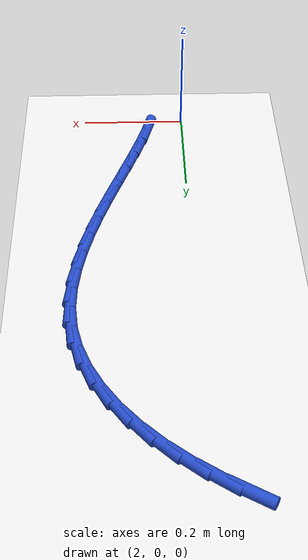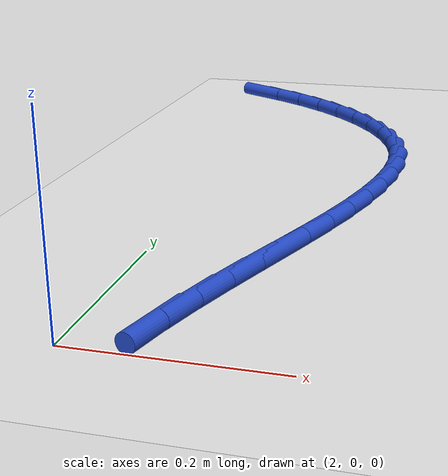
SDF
<sdf version="1.6">
 <world name="default">
  <model name="ground_plane">
   <static>1</static>
   <link name="link">
    <collision name="collision">
     <geometry><plane><normal>0 0 1</normal><size>100 100</size></plane></geometry>
     <surface><friction><ode><mu>100</mu><mu2>50</mu2></ode></friction></surface>
    </collision>
    <visual name="visual">
     <cast_shadows>0</cast_shadows>
     <geometry><plane><normal>0 0 1</normal><size>100 100</size></plane></geometry>
     <material>
      <script><uri>file://media/materials/scripts/gazebo.material</uri><name>Gazebo/WhiteGlow</name></script>
     </material>
    </visual>
   </link>
  </model>
  <model name="line">
   <link name="link_62">
    <pose>1.9425772596434834 0.8891730381126728 0.01 0 1.57 -0.5239647020566908</pose>
    <collision name="collision">
     <geometry><cylinder><radius>0.01</radius><length>0.08</length></cylinder></geometry>
    </collision>
    <visual name="visual">
     <material>
      <script><name>Gazebo/Blue</name><uri>file://media/materials/scripts/gazebo.material</uri></script>
     </material>
     <geometry><cylinder><radius>0.01</radius><length>0.08</length></cylinder></geometry>
    </visual>
   </link>
   <link name="link_63">
    <pose>1.98695704784988 0.863528697883657 0.01 0 1.57 -0.5955222361642104</pose>
    <collision name="collision">
     <geometry><cylinder><radius>0.01</radius><length>0.08</length></cylinder></geometry>
    </collision>
    <visual name="visual">
     <material>
      <script><name>Gazebo/Blue</name><uri>file://media/materials/scripts/gazebo.material</uri></script>
     </material>
     <geometry><cylinder><radius>0.01</radius><length>0.08</length></cylinder></geometry>
    </visual>
   </link>
   <link name="link_64">
    <pose>2.028680565102636 0.8352575397938995 0.01 0 1.57 -0.6728282916552596</pose>
    <collision name="collision">
     <geometry><cylinder><radius>0.01</radius><length>0.08</length></cylinder></geometry>
    </collision>
    <visual name="visual">
     <material>
      <script><name>Gazebo/Blue</name><uri>file://media/materials/scripts/gazebo.material</uri></script>
     </material>
     <geometry><cylinder><radius>0.01</radius><length>0.08</length></cylinder></geometry>
    </visual>
   </link>
   <link name="link_65">
    <pose>2.067290307007577 0.8044906703784166 0.01 0 1.57 -0.7574314253281289</pose>
    <collision name="collision">
     <geometry><cylinder><radius>0.01</radius><length>0.08</length></cylinder></geometry>
    </collision>
    <visual name="visual">
     <material>
      <script><name>Gazebo/Blue</name><uri>file://media/materials/scripts/gazebo.material</uri></script>
     </material>
     <geometry><cylinder><radius>0.01</radius><length>0.08</length></cylinder></geometry>
    </visual>
   </link>
   <link name="link_66">
    <pose>2.1023287691705272 0.7713591961722244 0.01 0 1.57 -0.8509210675143829</pose>
    <collision name="collision">
     <geometry><cylinder><radius>0.01</radius><length>0.08</length></cylinder></geometry>
    </collision>
    <visual name="visual">
     <material>
      <script><name>Gazebo/Blue</name><uri>file://media/materials/scripts/gazebo.material</uri></script>
     </material>
     <geometry><cylinder><radius>0.01</radius><length>0.08</length></cylinder></geometry>
    </visual>
   </link>
   <link name="link_67">
    <pose>2.1333384471973114 0.7359942237103403 0.01 0 1.57 -0.9547836935951365</pose>
    <collision name="collision">
     <geometry><cylinder><radius>0.01</radius><length>0.08</length></cylinder></geometry>
    </collision>
    <visual name="visual">
     <material>
      <script><name>Gazebo/Blue</name><uri>file://media/materials/scripts/gazebo.material</uri></script>
     </material>
     <geometry><cylinder><radius>0.01</radius><length>0.08</length></cylinder></geometry>
    </visual>
   </link>
   <link name="link_68">
    <pose>2.1598618366937536 0.6985268595277802 0.01 0 1.57 -1.0701294168392044</pose>
    <collision name="collision">
     <geometry><cylinder><radius>0.01</radius><length>0.08</length></cylinder></geometry>
    </collision>
    <visual name="visual">
     <material>
      <script><name>Gazebo/Blue</name><uri>file://media/materials/scripts/gazebo.material</uri></script>
     </material>
     <geometry><cylinder><radius>0.01</radius><length>0.08</length></cylinder></geometry>
    </visual>
   </link>
   <link name="link_69">
    <pose>2.1814414332656784 0.659088210159561 0.01 0 1.57 -1.1972684944772813</pose>
    <collision name="collision">
     <geometry><cylinder><radius>0.01</radius><length>0.08</length></cylinder></geometry>
    </collision>
    <visual name="visual">
     <material>
      <script><name>Gazebo/Blue</name><uri>file://media/materials/scripts/gazebo.material</uri></script>
     </material>
     <geometry><cylinder><radius>0.01</radius><length>0.08</length></cylinder></geometry>
    </visual>
   </link>
   <link name="link_70">
    <pose>2.1976197325189095 0.617809382140699 0.01 0 1.57 -1.335198524556531</pose>
    <collision name="collision">
     <geometry><cylinder><radius>0.01</radius><length>0.08</length></cylinder></geometry>
    </collision>
    <visual name="visual">
     <material>
      <script><name>Gazebo/Blue</name><uri>file://media/materials/scripts/gazebo.material</uri></script>
     </material>
     <geometry><cylinder><radius>0.01</radius><length>0.08</length></cylinder></geometry>
    </visual>
   </link>
   <link name="link_71">
    <pose>2.207939230059273 0.5748214820062107 0.01 0 1.57 -1.4797326259009584</pose>
    <collision name="collision">
     <geometry><cylinder><radius>0.01</radius><length>0.08</length></cylinder></geometry>
    </collision>
    <visual name="visual">
     <material>
      <script><name>Gazebo/Blue</name><uri>file://media/materials/scripts/gazebo.material</uri></script>
     </material>
     <geometry><cylinder><radius>0.01</radius><length>0.08</length></cylinder></geometry>
    </visual>
   </link>
   <link name="link_72">
    <pose>2.2120068470290923 0.5302772014035426 0.01 0 1.57 1.5339025078505513</pose>
    <collision name="collision">
     <geometry><cylinder><radius>0.01</radius><length>0.08</length></cylinder></geometry>
    </collision>
    <visual name="visual">
     <material>
      <script><name>Gazebo/Blue</name><uri>file://media/materials/scripts/gazebo.material</uri></script>
     </material>
     <geometry><cylinder><radius>0.01</radius><length>0.08</length></cylinder></geometry>
    </visual>
   </link>
   <link name="link_73">
    <pose>2.2103219174329536 0.484628225717903 0.01 0 1.57 1.435227888968891</pose>
    <collision name="collision">
     <geometry><cylinder><radius>0.01</radius><length>0.08</length></cylinder></geometry>
    </collision>
    <visual name="visual">
     <material>
      <script><name>Gazebo/Blue</name><uri>file://media/materials/scripts/gazebo.material</uri></script>
     </material>
     <geometry><cylinder><radius>0.01</radius><length>0.08</length></cylinder></geometry>
    </visual>
   </link>
   <link name="link_74">
    <pose>2.204035892144817 0.4385447253748639 0.01 0 1.57 1.3617427327181393</pose>
    <collision name="collision">
     <geometry><cylinder><radius>0.01</radius><length>0.08</length></cylinder></geometry>
    </collision>
    <visual name="visual">
     <material>
      <script><name>Gazebo/Blue</name><uri>file://media/materials/scripts/gazebo.material</uri></script>
     </material>
     <geometry><cylinder><radius>0.01</radius><length>0.08</length></cylinder></geometry>
    </visual>
   </link>
   <link name="link_75">
    <pose>2.1943083415701703 0.39269319632066535 0.01 0 1.57 1.306293230474202</pose>
    <collision name="collision">
     <geometry><cylinder><radius>0.01</radius><length>0.08</length></cylinder></geometry>
    </collision>
    <visual name="visual">
     <material>
      <script><name>Gazebo/Blue</name><uri>file://media/materials/scripts/gazebo.material</uri></script>
     </material>
     <geometry><cylinder><radius>0.01</radius><length>0.08</length></cylinder></geometry>
    </visual>
   </link>
   <link name="link_76">
    <pose>2.1820446405932965 0.34741447920468616 0.01 0 1.57 1.2633309405001432</pose>
    <collision name="collision">
     <geometry><cylinder><radius>0.01</radius><length>0.08</length></cylinder></geometry>
    </collision>
    <visual name="visual">
     <material>
      <script><name>Gazebo/Blue</name><uri>file://media/materials/scripts/gazebo.material</uri></script>
     </material>
     <geometry><cylinder><radius>0.01</radius><length>0.08</length></cylinder></geometry>
    </visual>
   </link>
   <link name="link_77">
    <pose>2.1678248303526586 0.30263262268456276 0.01 0 1.57 1.2324912851083443</pose>
    <collision name="collision">
     <geometry><cylinder><radius>0.01</radius><length>0.08</length></cylinder></geometry>
    </collision>
    <visual name="visual">
     <material>
      <script><name>Gazebo/Blue</name><uri>file://media/materials/scripts/gazebo.material</uri></script>
     </material>
     <geometry><cylinder><radius>0.01</radius><length>0.08</length></cylinder></geometry>
    </visual>
   </link>
   <link name="link_78">
    <pose>2.152207692947173 0.25824444000952995 0.01 0 1.57 1.213636072155509</pose>
    <collision name="collision">
     <geometry><cylinder><radius>0.01</radius><length>0.08</length></cylinder></geometry>
    </collision>
    <visual name="visual">
     <material>
      <script><name>Gazebo/Blue</name><uri>file://media/materials/scripts/gazebo.material</uri></script>
     </material>
     <geometry><cylinder><radius>0.01</radius><length>0.08</length></cylinder></geometry>
    </visual>
   </link>
   <link name="link_79">
    <pose>2.1357520104757546 0.21414674442882006 0.01 0 1.57 1.2066647263229426</pose>
    <collision name="collision">
     <geometry><cylinder><radius>0.01</radius><length>0.08</length></cylinder></geometry>
    </collision>
    <visual name="visual">
     <material>
      <script><name>Gazebo/Blue</name><uri>file://media/materials/scripts/gazebo.material</uri></script>
     </material>
     <geometry><cylinder><radius>0.01</radius><length>0.08</length></cylinder></geometry>
    </visual>
   </link>
   <link name="link_80">
    <pose>2.1190165650373203 0.1702363491916677 0.01 0 1.57 1.2115942206766528</pose>
    <collision name="collision">
     <geometry><cylinder><radius>0.01</radius><length>0.08</length></cylinder></geometry>
    </collision>
    <visual name="visual">
     <material>
      <script><name>Gazebo/Blue</name><uri>file://media/materials/scripts/gazebo.material</uri></script>
     </material>
     <geometry><cylinder><radius>0.01</radius><length>0.08</length></cylinder></geometry>
    </visual>
   </link>
   <link name="link_81">
    <pose>2.1025601387307873 0.126410067547306 0.01 0 1.57 1.2285904234382172</pose>
    <collision name="collision">
     <geometry><cylinder><radius>0.01</radius><length>0.08</length></cylinder></geometry>
    </collision>
    <visual name="visual">
     <material>
      <script><name>Gazebo/Blue</name><uri>file://media/materials/scripts/gazebo.material</uri></script>
     </material>
     <geometry><cylinder><radius>0.01</radius><length>0.08</length></cylinder></geometry>
    </visual>
   </link>
   <link name="link_82">
    <pose>2.0869415136550704 0.08256471274496804 0.01 0 1.57 1.2579522297177779</pose>
    <collision name="collision">
     <geometry><cylinder><radius>0.01</radius><length>0.08</length></cylinder></geometry>
    </collision>
    <visual name="visual">
     <material>
      <script><name>Gazebo/Blue</name><uri>file://media/materials/scripts/gazebo.material</uri></script>
     </material>
     <geometry><cylinder><radius>0.01</radius><length>0.08</length></cylinder></geometry>
    </visual>
   </link>
   <link name="link_83">
    <pose>2.0727194719090867 0.0385970980338883 0.01 0 1.57 1.3000422069692195</pose>
    <collision name="collision">
     <geometry><cylinder><radius>0.01</radius><length>0.08</length></cylinder></geometry>
    </collision>
    <visual name="visual">
     <material>
      <script><name>Gazebo/Blue</name><uri>file://media/materials/scripts/gazebo.material</uri></script>
     </material>
     <geometry><cylinder><radius>0.01</radius><length>0.08</length></cylinder></geometry>
    </visual>
   </link>
  </model>
 </world>
</sdf>
